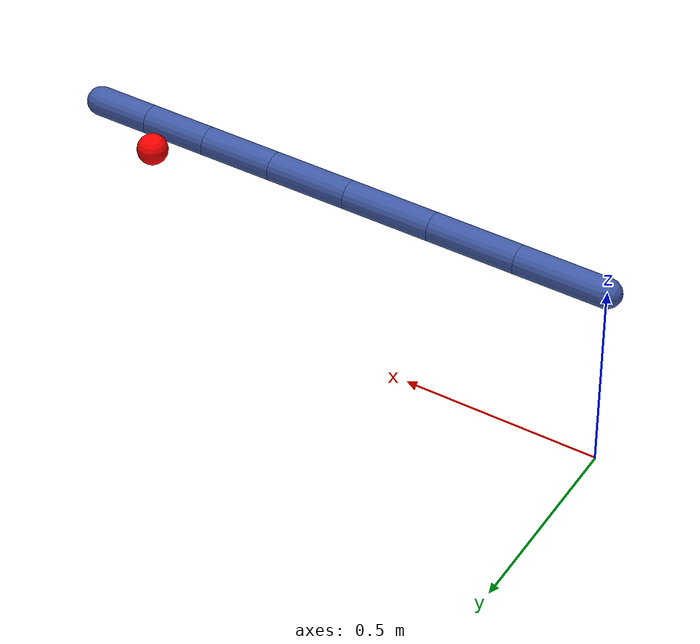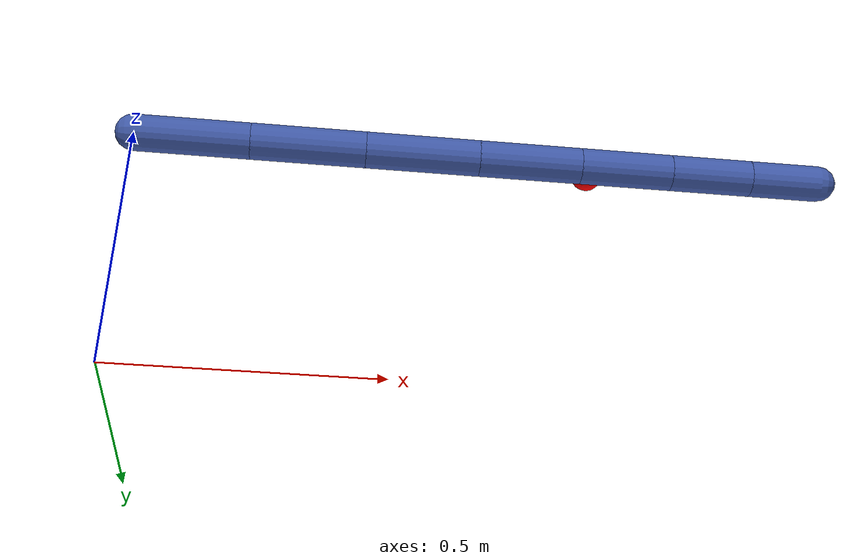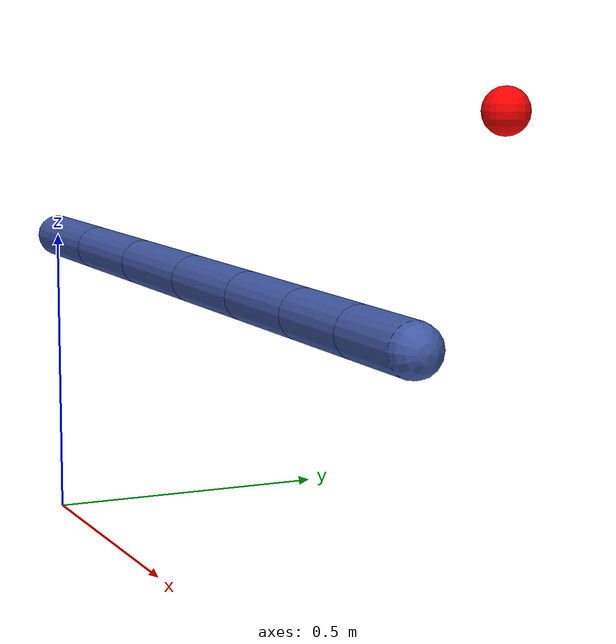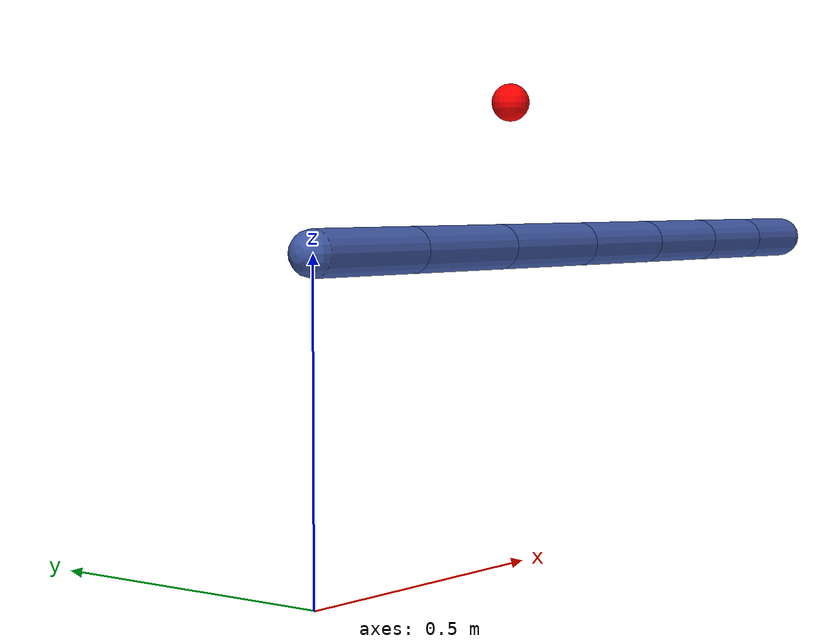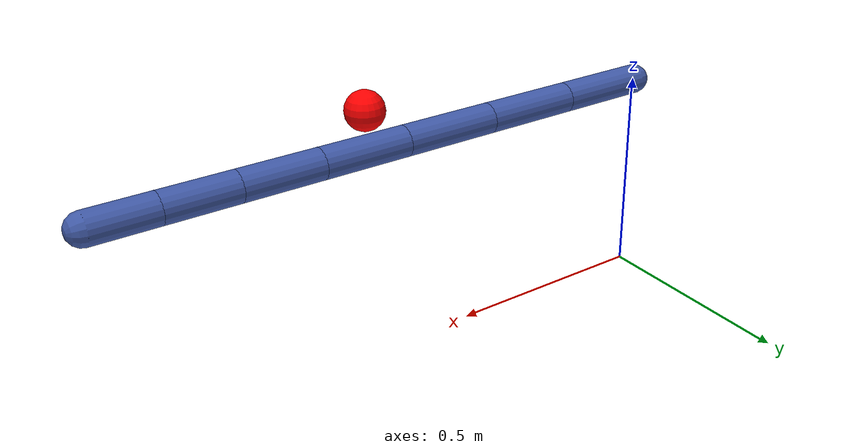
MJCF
<mujoco model="7 DoF arm reach">
  <option timestep="0.001" integrator="implicitfast"/>
  <default>
    <joint damping=".08" armature=".015" limited="true" range="-170 170"/>
    <geom type="capsule" size=".035" mass=".7" rgba=".25 .35 .65 1"/>
    <motor ctrlrange="-35 35" ctrllimited="true"/>
  </default>
  <worldbody>
    <body name="base" pos="0 0 .5">
      <joint name="j1" axis="0 0 1"/><geom fromto="0 0 0 .22 0 0"/>
      <body pos=".22 0 0"><joint name="j2" axis="0 1 0"/><geom fromto="0 0 0 .22 0 0"/>
        <body pos=".22 0 0"><joint name="j3" axis="0 1 0"/><geom fromto="0 0 0 .22 0 0"/>
          <body pos=".22 0 0"><joint name="j4" axis="1 0 0"/><geom fromto="0 0 0 .20 0 0"/>
            <body pos=".20 0 0"><joint name="j5" axis="0 1 0"/><geom fromto="0 0 0 .18 0 0"/>
              <body pos=".18 0 0"><joint name="j6" axis="1 0 0"/><geom fromto="0 0 0 .16 0 0"/>
                <body pos=".16 0 0"><joint name="j7" axis="0 0 1"/><geom fromto="0 0 0 .14 0 0"/>
                  <site name="tcp" pos=".14 0 0" size=".025" rgba="0 1 0 1"/>
                </body>
              </body>
            </body>
          </body>
        </body>
      </body>
    </body>
    <site name="target" pos=".95 .35 .75" size=".035" rgba="1 0 0 1"/>
  </worldbody>
  <actuator>
    <motor joint="j1"/><motor joint="j2"/><motor joint="j3"/><motor joint="j4"/>
    <motor joint="j5"/><motor joint="j6"/><motor joint="j7"/>
  </actuator>
</mujoco>
